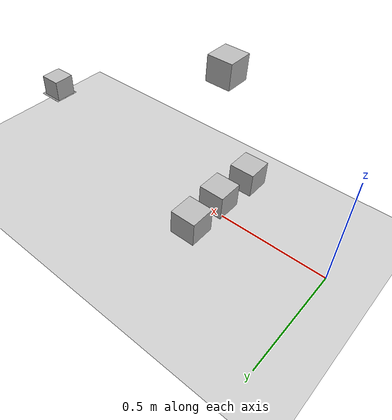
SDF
<sdf version="1.6">
 <world name="default">
  <light name="sun" type="directional">
   <pose>0 0 10 0 -0 0</pose>
   <diffuse>0.8 0.8 0.8 1</diffuse>
   <specular>0.2 0.2 0.2 1</specular>
   <attenuation>
    <range>1000</range>
    <constant>0.9</constant>
    <linear>0.01</linear>
    <quadratic>0.001</quadratic>
   </attenuation>
   <direction>-0.5 0.1 -0.9</direction>
  </light>
  <model name="ground_plane">
   <static>1</static>
   <link name="link">
    <collision name="collision">
     <geometry><plane><normal>0 0 1</normal><size>100 100</size></plane></geometry>
     <surface>
      <contact><collide_bitmask>65535</collide_bitmask></contact>
      <friction><ode><mu>100</mu><mu2>50</mu2></ode></friction>
     </surface>
    </collision>
    <visual name="visual">
     <cast_shadows>0</cast_shadows>
     <geometry><plane><normal>0 0 1</normal><size>100 100</size></plane></geometry>
     <material>
      <script><uri>file://media/materials/scripts/gazebo.material</uri><name>Gazebo/Grey</name></script>
     </material>
    </visual>
   </link>
  </model>
  <gravity>0 0 -9.8</gravity>
  <magnetic_field>6e-06 2.3e-05 -4.2e-05</magnetic_field>
  <atmosphere type="adiabatic"/>
  <physics name="default_physics" default="0" type="ode">
   <max_step_size>0.001</max_step_size>
   <real_time_factor>1</real_time_factor>
   <real_time_update_rate>1000</real_time_update_rate>
  </physics>
  <scene><ambient>0.4 0.4 0.4 1</ambient><background>0.7 0.7 0.7 1</background><shadows>1</shadows></scene>
  <spherical_coordinates>
   <surface_model>EARTH_WGS84</surface_model>
   <latitude_deg>0</latitude_deg>
   <longitude_deg>0</longitude_deg>
   <elevation>0</elevation>
   <heading_deg>0</heading_deg>
  </spherical_coordinates>
  <model name="unit_box">
   <link name="link">
    <inertial>
     <mass>1</mass>
     <inertia>
      <ixx>0.166667</ixx>
      <ixy>0</ixy>
      <ixz>0</ixz>
      <iyy>0.166667</iyy>
      <iyz>0</iyz>
      <izz>0.166667</izz>
     </inertia>
    </inertial>
    <visual name="visual">
     <geometry><box><size>0.122195 0.120438 0.000127285</size></box></geometry>
     <material>
      <script><name>Gazebo/Grey</name><uri>file://media/materials/scripts/gazebo.material</uri></script>
     </material>
    </visual>
    <collision name="collision">
     <geometry><box><size>0.122195 0.120438 0.000127285</size></box></geometry>
     <surface>
      <friction>
       <ode><mu>1</mu><mu2>1</mu2><fdir1>0 0 0</fdir1><slip1>0</slip1><slip2>0</slip2></ode>
       <torsional>
        <coefficient>1</coefficient>
        <patch_radius>0</patch_radius>
        <surface_radius>0</surface_radius>
        <use_patch_radius>1</use_patch_radius>
        <ode><slip>0</slip></ode>
       </torsional>
      </friction>
      <bounce><restitution_coefficient>0</restitution_coefficient><threshold>1e+06</threshold></bounce>
      <contact>
       <collide_without_contact>0</collide_without_contact>
       <collide_without_contact_bitmask>1</collide_without_contact_bitmask>
       <collide_bitmask>1</collide_bitmask>
       <ode>
        <soft_cfm>0</soft_cfm>
        <soft_erp>0.2</soft_erp>
        <kp>1e+13</kp>
        <kd>1</kd>
        <max_vel>0.01</max_vel>
        <min_depth>0</min_depth>
       </ode>
       <bullet>
        <split_impulse>1</split_impulse>
        <split_impulse_penetration_threshold>-0.01</split_impulse_penetration_threshold>
        <soft_cfm>0</soft_cfm>
        <soft_erp>0.2</soft_erp>
        <kp>1e+13</kp>
        <kd>1</kd>
       </bullet>
      </contact>
     </surface>
    </collision>
   </link>
   <static>1</static>
   <pose>1.55463 -2.9e-05 0.179583 0 0 -0.001072</pose>
  </model>
  <model name="camera">
   <pose>1.55 0 0.229647 0 -0 3.1415</pose>
   <link name="link">
    <inertial>
     <mass>0.1</mass>
     <inertia>
      <ixx>0.000166667</ixx>
      <iyy>0.000166667</iyy>
      <izz>0.000166667</izz>
      <ixy>0</ixy>
      <ixz>0</ixz>
      <iyz>0</iyz>
     </inertia>
    </inertial>
    <collision name="collision"><geometry><box><size>0.1 0.1 0.1</size></box></geometry></collision>
    <visual name="visual"><geometry><box><size>0.1 0.1 0.1</size></box></geometry></visual>
    <sensor name="camera1" type="camera">
     <camera name="head">
      <horizontal_fov>1.39626</horizontal_fov>
      <image><width>800</width><height>800</height><format>R8G8B8</format></image>
      <clip><near>0.02</near><far>300</far></clip>
     </camera>
     <always_on>1</always_on>
     <update_rate>30</update_rate>
     <visualize>1</visualize>
     <plugin name="camera_controller" filename="libgazebo_ros_camera.so">
      <alwaysOn>1</alwaysOn>
      <updateRate>0.0</updateRate>
      <cameraName>camera</cameraName>
      <imageTopicName>image_raw</imageTopicName>
      <cameraInfoTopicName>camera_info</cameraInfoTopicName>
      <frameName>camera_link</frameName>
      <hackBaseline>0.07</hackBaseline>
      <distortionK1>0.0</distortionK1>
      <distortionK2>0.0</distortionK2>
      <distortionK3>0.0</distortionK3>
      <distortionT1>0.0</distortionT1>
      <distortionT2>0.0</distortionT2>
     </plugin>
    </sensor>
   </link>
  </model>
  <model name="unit_box_clone_0">
   <link name="link">
    <inertial>
     <mass>1</mass>
     <inertia>
      <ixx>0.166667</ixx>
      <ixy>0</ixy>
      <ixz>0</ixz>
      <iyy>0.166667</iyy>
      <iyz>0</iyz>
      <izz>0.166667</izz>
     </inertia>
    </inertial>
    <visual name="visual">
     <geometry><box><size>0.01133 0.00215432 0.00021955</size></box></geometry>
     <material>
      <script><name>Gazebo/Grey</name><uri>file://media/materials/scripts/gazebo.material</uri></script>
     </material>
    </visual>
    <collision name="collision">
     <geometry><box><size>0.01133 0.00215432 0.00021955</size></box></geometry>
     <surface>
      <friction>
       <ode><mu>1</mu><mu2>1</mu2><fdir1>0 0 0</fdir1><slip1>0</slip1><slip2>0</slip2></ode>
       <torsional>
        <coefficient>1</coefficient>
        <patch_radius>0</patch_radius>
        <surface_radius>0</surface_radius>
        <use_patch_radius>1</use_patch_radius>
        <ode><slip>0</slip></ode>
       </torsional>
      </friction>
      <bounce><restitution_coefficient>0</restitution_coefficient><threshold>1e+06</threshold></bounce>
      <contact>
       <collide_without_contact>0</collide_without_contact>
       <collide_without_contact_bitmask>1</collide_without_contact_bitmask>
       <collide_bitmask>1</collide_bitmask>
       <ode>
        <soft_cfm>0</soft_cfm>
        <soft_erp>0.2</soft_erp>
        <kp>1e+13</kp>
        <kd>1</kd>
        <max_vel>0.01</max_vel>
        <min_depth>0</min_depth>
       </ode>
       <bullet>
        <split_impulse>1</split_impulse>
        <split_impulse_penetration_threshold>-0.01</split_impulse_penetration_threshold>
        <soft_cfm>0</soft_cfm>
        <soft_erp>0.2</soft_erp>
        <kp>1e+13</kp>
        <kd>1</kd>
       </bullet>
      </contact>
     </surface>
    </collision>
   </link>
   <static>1</static>
   <pose>0.6 0 0 0 0 -0.001072</pose>
  </model>
  <model name="box_apple">
   <link name="box_apple_link">
    <inertial>
     <mass>1</mass>
     <inertia>
      <ixx>0.166667</ixx>
      <ixy>0</ixy>
      <ixz>0</ixz>
      <iyy>0.166667</iyy>
      <iyz>0</iyz>
      <izz>0.166667</izz>
     </inertia>
    </inertial>
    <collision name="box_apple_collision"><geometry><box><size>0.12 0.12 0.12</size></box></geometry></collision>
    <visual name="box_apple_visual">
     <geometry><box><size>0.12 0.12 0.12</size></box></geometry>
     <material>
      <script>
       <uri>model://apple_box/materials/scripts</uri>
       <uri>model://apple_box/materials/textures</uri>
       <name>apple_box</name>
      </script>
     </material>
    </visual>
   </link>
   <static>0</static>
   <pose>0.548586 0.15548 0.06 1e-06 -0 0.000175</pose>
  </model>
  <model name="box_banana">
   <link name="box_banana_link">
    <inertial>
     <mass>1</mass>
     <inertia>
      <ixx>0.166667</ixx>
      <ixy>0</ixy>
      <ixz>0</ixz>
      <iyy>0.166667</iyy>
      <iyz>0</iyz>
      <izz>0.166667</izz>
     </inertia>
    </inertial>
    <collision name="box_banana_collision"><geometry><box><size>0.12 0.12 0.12</size></box></geometry></collision>
    <visual name="box_banana_visual">
     <geometry><box><size>0.12 0.12 0.12</size></box></geometry>
     <material>
      <script>
       <uri>model://banana_box/materials/scripts</uri>
       <uri>model://banana_box/materials/textures</uri>
       <name>banana_box</name>
      </script>
     </material>
    </visual>
   </link>
   <static>0</static>
   <pose>0.55262 -0.038312 0.060065 1.8e-05 -0.001059 -0.008644</pose>
  </model>
  <model name="box_cup">
   <link name="box_cup_link">
    <inertial>
     <mass>1</mass>
     <inertia>
      <ixx>0.166667</ixx>
      <ixy>0</ixy>
      <ixz>0</ixz>
      <iyy>0.166667</iyy>
      <iyz>0</iyz>
      <izz>0.166667</izz>
     </inertia>
    </inertial>
    <collision name="box_cup_collision"><geometry><box><size>0.12 0.12 0.12</size></box></geometry></collision>
    <visual name="box_cup_visual">
     <geometry><box><size>0.12 0.12 0.12</size></box></geometry>
     <material>
      <script>
       <uri>model://cup_box/materials/scripts</uri>
       <uri>model://cup_box/materials/textures</uri>
       <name>cup_box</name>
      </script>
     </material>
    </visual>
   </link>
   <static>0</static>
   <pose>0.539045 -0.240414 0.06 -1e-06 -2e-06 0.003836</pose>
  </model>
  <model name="upper_camera">
   <pose>0.55 0 0.7 0 1.55374 0</pose>
   <link name="link">
    <inertial>
     <mass>0.1</mass>
     <inertia>
      <ixx>0.000166667</ixx>
      <iyy>0.000166667</iyy>
      <izz>0.000166667</izz>
      <ixy>0</ixy>
      <ixz>0</ixz>
      <iyz>0</iyz>
     </inertia>
    </inertial>
    <collision name="collision"><geometry><box><size>0.1 0.1 0.1</size></box></geometry></collision>
    <visual name="visual"><geometry><box><size>0.1 0.1 0.1</size></box></geometry></visual>
    <sensor name="camera1" type="camera">
     <camera name="head">
      <horizontal_fov>1.39626</horizontal_fov>
      <image><width>800</width><height>800</height><format>R8G8B8</format></image>
      <clip><near>0.02</near><far>300</far></clip>
     </camera>
     <always_on>1</always_on>
     <update_rate>30</update_rate>
     <visualize>1</visualize>
     <plugin name="camera_controller" filename="libgazebo_ros_camera.so">
      <alwaysOn>1</alwaysOn>
      <updateRate>0.0</updateRate>
      <cameraName>upper_camera</cameraName>
      <imageTopicName>image_raw</imageTopicName>
      <cameraInfoTopicName>camera_info</cameraInfoTopicName>
      <frameName>camera_link</frameName>
      <hackBaseline>0.07</hackBaseline>
      <distortionK1>0.0</distortionK1>
      <distortionK2>0.0</distortionK2>
      <distortionK3>0.0</distortionK3>
      <distortionT1>0.0</distortionT1>
      <distortionT2>0.0</distortionT2>
     </plugin>
    </sensor>
   </link>
   <static>1</static>
  </model>
 </world>
</sdf>
